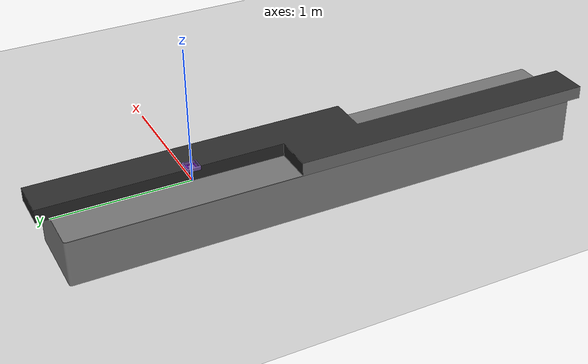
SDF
<?xml version="1.0" ?>
<sdf version="1.7">
  <world name="empty_world">
    <!-- physics & atmosphere -->
    <gravity>0 0 -9.81</gravity>
    <atmosphere type="adiabatic"/>

    <!-- lighting -->
    <light name="sun" type="directional">
      <pose>0 0 10 0 0 0</pose>
      <diffuse>1 1 1 1</diffuse>
      <specular>0.1 0.1 0.1 1</specular>
      <attenuation>
        <range>1000</range>
        <constant>0.9</constant>
        <linear>0.01</linear>
        <quadratic>0.001</quadratic>
      </attenuation>
      <direction>-0.5 0.5 -1</direction>
      <cast_shadows>true</cast_shadows>
    </light>

    <!-- simple ground plane -->
    <model name="ground_plane">
      <static>true</static>
      <link name="link">
        <collision name="collision">
          <geometry>
            <plane>
              <normal>0 0 1</normal>
              <size>100 100</size>
            </plane>
          </geometry>
        </collision>
        <visual name="visual">
          <geometry>
            <plane>
              <normal>0 0 1</normal>
              <size>100 100</size>
            </plane>
          </geometry>
          <material>
            <ambient>0.5 0.5 0.5 1</ambient>
            <diffuse>0.5 0.5 0.5 1</diffuse>
          </material>
        </visual>
      </link>
    </model>

<include>
    <uri>model://container_l</uri>
    <pose>0 0 0.1 0 0 0</pose>
</include>

<include>
    <uri>model://container_m</uri>
    <pose>0 0 0.1 0 0 0</pose>
</include>

<include>
    <uri>model://platform</uri>
    <pose>0 -1.0 0.1 0 0 0</pose>
</include>

  </world>
</sdf>

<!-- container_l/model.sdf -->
<sdf version="1.6">
  <model name="container_l">
    <static>false</static>

    <link name="link_container_l">
      <inertial>
        <mass>0.185</mass>
        <pose>0 0 0.011014 0 0 0</pose>
        <inertia>
          <ixx>2.24613e-4</ixx>
          <iyy>2.24613e-4</iyy>
          <izz>4.23503e-4</izz>
          <ixy>0</ixy>
          <ixz>0</ixz>
          <iyz>0</iyz>
        </inertia>
      </inertial>

      <collision name="collision">
        <geometry>
          <mesh>
            <uri>model://container_l/meshes/container_l.dae</uri>
          </mesh>
        </geometry>
      </collision>

      <visual name="visual">
        <geometry>
          <mesh>
            <uri>model://container_l/meshes/container_l.dae</uri>
          </mesh>
        </geometry>
      </visual>
    </link>
  </model>
</sdf>

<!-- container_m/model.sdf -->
<sdf version="1.6">
  <model name="container_m">
    <pose>0 0 1 0 0 0</pose>
    <static>false</static>

    <link name="link_container_m">
      <inertial>
        <mass>0.059</mass>
        <pose>0 0 0.006419 0 0 0</pose>
        <inertia>
          <ixx>2.6257e-5</ixx>
          <iyy>2.6257e-5</iyy>
          <izz>5.0783e-5</izz>
          <ixy>0.0</ixy>
          <ixz>0.0</ixz>
          <iyz>0.0</iyz>
        </inertia>
      </inertial>

      <!-- 注意尺寸单位已改为米 -->
      <collision name="collision">
        <geometry>
          <mesh>
            <uri>model://container_m/meshes/container_m.dae</uri>
          </mesh>
        </geometry>
      </collision>

      <visual name="visual">
        <geometry>
          <mesh>
            <uri>model://container_m/meshes/container_m.dae</uri>
          </mesh>
        </geometry>
      </visual>
    </link>
  </model>
</sdf>

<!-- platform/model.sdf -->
<sdf version="1.6">
  <model name="platform">
    <pose>0 0 1 0 0 0</pose>
    <static>true</static>
    <link name="link">
      <collision name="collision">
        <geometry>
          <mesh>
            <uri>model://platform/meshes/platform.dae</uri>
          </mesh>
        </geometry>
      </collision>

      <visual name="visual">
        <geometry>
          <mesh>
            <uri>model://platform/meshes/platform.dae</uri>
          </mesh>
        </geometry>
      </visual>
    </link>
  </model>
</sdf>
